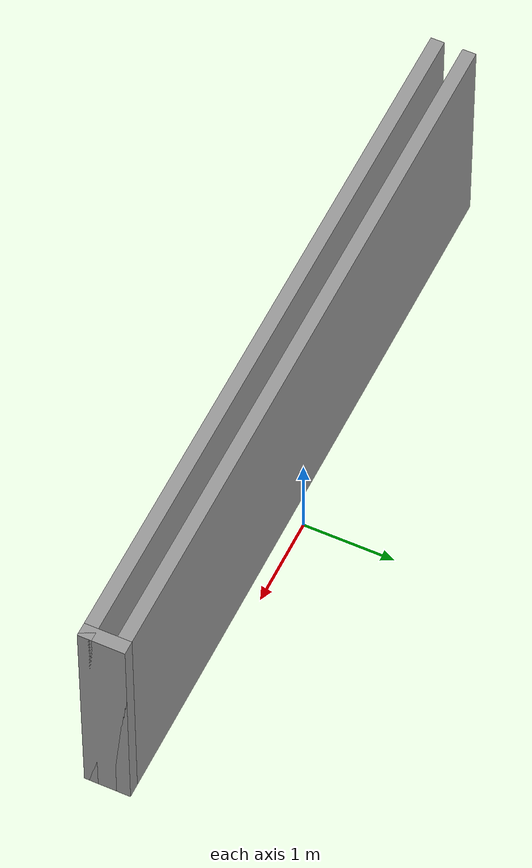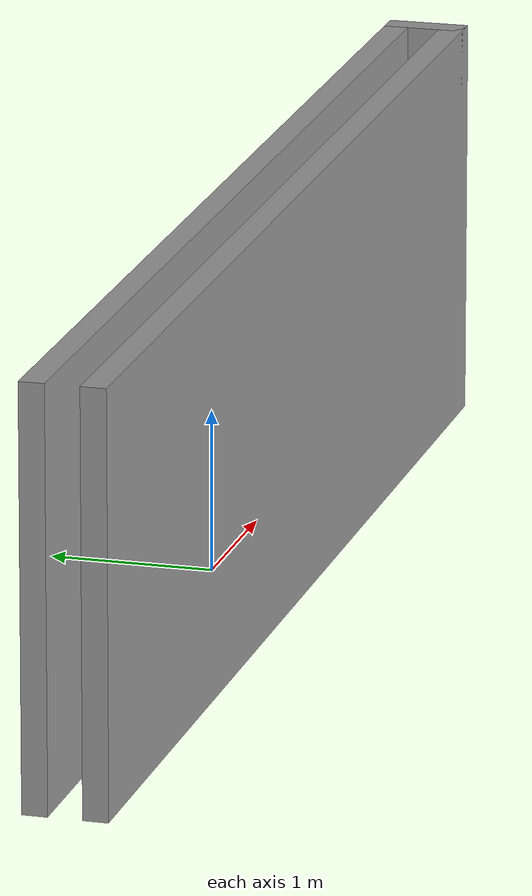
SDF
<?xml version='1.0'?>
<sdf version='1.7'>
  <model name='Untitled'>
    <pose>-0.386289 -0.324757 0 0 -0 0</pose>
    <link name='Wall_14'>
      <collision name='Wall_14_Collision'>
        <geometry>
          <box>
            <size>8 0.15 2.5</size>
          </box>
        </geometry>
        <pose>0 0 1.25 0 -0 0</pose>
      </collision>
      <visual name='Wall_14_Visual'>
        <pose>0 0 1.25 0 -0 0</pose>
        <geometry>
          <box>
            <size>8 0.15 2.5</size>
          </box>
        </geometry>
        <material>
          <script>
            <uri>file://media/materials/scripts/gazebo.material</uri>
            <name>Gazebo/Grey</name>
          </script>
          <ambient>1 1 1 1</ambient>
        </material>
        <meta>
          <layer>0</layer>
        </meta>
      </visual>
      <pose>-0 -0.249757 0 0 -0 0</pose>
    </link>
    <link name='Wall_15'>
      <collision name='Wall_15_Collision'>
        <geometry>
          <box>
            <size>0.5 0.15 2.5</size>
          </box>
        </geometry>
        <pose>0 0 1.25 0 -0 0</pose>
      </collision>
      <visual name='Wall_15_Visual'>
        <pose>0 0 1.25 0 -0 0</pose>
        <geometry>
          <box>
            <size>0.5 0.15 2.5</size>
          </box>
        </geometry>
        <material>
          <script>
            <uri>file://media/materials/scripts/gazebo.material</uri>
            <name>Gazebo/Grey</name>
          </script>
          <ambient>1 1 1 1</ambient>
        </material>
        <meta>
          <layer>0</layer>
        </meta>
      </visual>
      <pose>3.925 -0.074757 0 0 -0 1.5708</pose>
    </link>
    <link name='Wall_16'>
      <collision name='Wall_16_Collision'>
        <geometry>
          <box>
            <size>8 0.15 2.5</size>
          </box>
        </geometry>
        <pose>0 0 1.25 0 -0 0</pose>
      </collision>
      <visual name='Wall_16_Visual'>
        <pose>0 0 1.25 0 -0 0</pose>
        <geometry>
          <box>
            <size>8 0.15 2.5</size>
          </box>
        </geometry>
        <material>
          <script>
            <uri>file://media/materials/scripts/gazebo.material</uri>
            <name>Gazebo/Grey</name>
          </script>
          <ambient>1 1 1 1</ambient>
        </material>
        <meta>
          <layer>0</layer>
        </meta>
      </visual>
      <pose>-0 0.100243 0 0 -0 3.14159</pose>
    </link>
    <static>1</static>
  </model>
</sdf>
